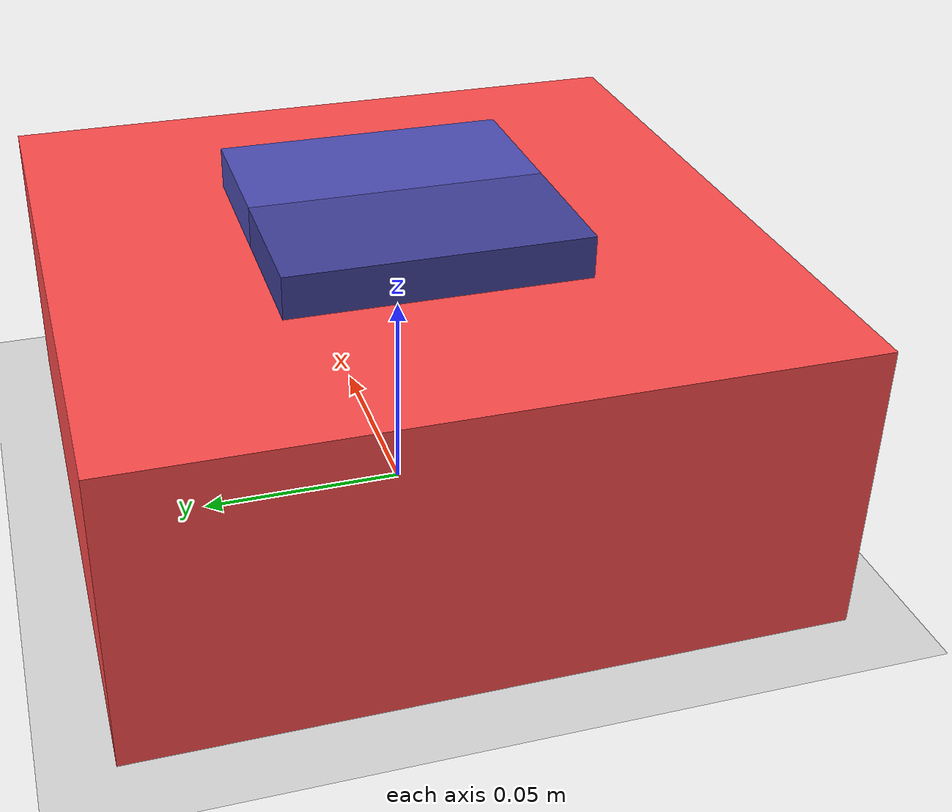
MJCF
<mujoco model="car_primitive_gen_square">
  <compiler angle="radian"/>
  <include file="/common/home/dm1487/robotics_research/ktamp/namo/test_xml/little-car-modeling-package/assets/mjcf/little_car.xml"/>
  <option gravity="0 0 -9.81" timestep="0.002" integrator="implicitfast" iterations="100"/>

  <worldbody>
    <light name="sun" pos="0 0 2" dir="0 0 -1" directional="true"/>
    <geom name="ground" type="plane" size="2 2 0.1" rgba="0.85 0.85 0.85 1"
          friction="1.3 0.05 0.01"/>

    <!-- Pushable object at origin -->
    <body name="obstacle_1_movable" pos="0 0 0.035000">
      <joint type="free"/>
      <geom name="obstacle_1_movable" type="box"
            size="0.081667 0.081667 0.035000"
            mass="0.020000"
            friction="0.4 0.005 0.001"
            rgba="1 0.3 0.3 1" condim="4"/>
    </body>
  </worldbody>
</mujoco>

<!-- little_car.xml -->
<mujoco model="little_car">
  <compiler angle="radian" autolimits="true"/>
  <default>
    <geom condim="4" solref="0.004 1" solimp="0.9 0.95 0.001" friction="1.2 0.04 0.01"/>
    <joint damping="0.01" armature="0.0001"/>
  </default>
  <worldbody>
    <body name="car" pos="0 0 0.010000">
      <freejoint name="car_freejoint"/>
      <inertial pos="0.000000 0 0.037500" mass="0.350000"
                diaginertia="0.000266 0.000266 0.000286"/>
      <geom name="front_chassis_collision" type="box" pos="0.017500 0 0.037500"
            size="0.017500 0.035000 0.032500"
            rgba="0.3 0.3 0.7 1"/>
      <geom name="rear_chassis_collision" type="box" pos="-0.017500 0 0.037500"
            size="0.017500 0.035000 0.032500"
            rgba="0.25 0.25 0.6 1"/>
      <geom name="front_marker" type="box" pos="0.034000 0 0.050500"
            size="0.002000 0.015000 0.010000"
            rgba="1.0 0.2 0.2 1" contype="0" conaffinity="0"/>

      <body name="rear_support_body" pos="-0.030000 0.000000 0.002500">
        <joint name="rear_caster_joint" type="ball" damping="0.0001"/>
        <inertial pos="0 0 0" mass="0.025000"
                  diaginertia="0.000001 0.000001 0.000001"/>
        <geom name="rear_support" type="sphere"
              pos="0 0 0"
              size="0.002500"
              friction="0.000000 0.000000 0.000000"
              rgba="0.7 0.1 0.1 1"/>
      </body>

      <body name="front_support_body" pos="0.030000 0.000000 0.002500">
        <joint name="front_caster_joint" type="ball" damping="0.0001"/>
        <inertial pos="0 0 0" mass="0.025000"
                  diaginertia="0.000001 0.000001 0.000001"/>
        <geom name="front_support" type="sphere"
              pos="0 0 0"
              size="0.002500"
              friction="0.000000 0.000000 0.000000"
              rgba="0.1 0.7 0.1 1"/>
      </body>

      <body name="left_wheel" pos="0.000000 0.037500 0.015000">
        <inertial pos="0 0 0" mass="0.050000"
                  diaginertia="0.000003 0.000006 0.000003"/>
        <joint name="left_wheel_joint" type="hinge" axis="0 1 0"/>
        <geom name="left_wheel_collision" type="cylinder" size="0.015000 0.000500"
              euler="1.57079632679 0 0" rgba="0.1 0.1 0.1 1"/>
      </body>

      <body name="right_wheel" pos="0.000000 -0.037500 0.015000">
        <inertial pos="0 0 0" mass="0.050000"
                  diaginertia="0.000003 0.000006 0.000003"/>
        <joint name="right_wheel_joint" type="hinge" axis="0 1 0"/>
        <geom name="right_wheel_collision" type="cylinder" size="0.015000 0.000500"
              euler="1.57079632679 0 0" rgba="0.1 0.1 0.1 1"/>
      </body>
    </body>
  </worldbody>
  <actuator>
    <velocity name="left_wheel_drive" joint="left_wheel_joint"
              ctrlrange="-25.000000 25.000000"
              kv="0.750000" forcerange="-0.300000 0.300000"/>
    <velocity name="right_wheel_drive" joint="right_wheel_joint"
              ctrlrange="-25.000000 25.000000"
              kv="0.750000" forcerange="-0.300000 0.300000"/>
  </actuator>
</mujoco>
